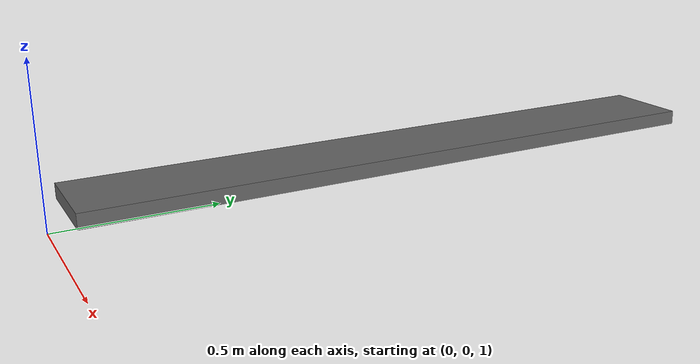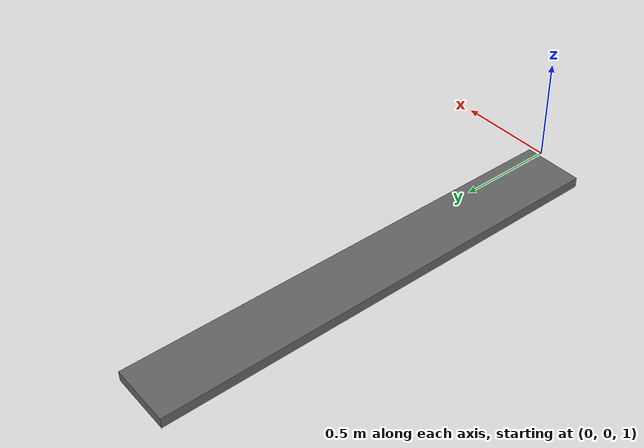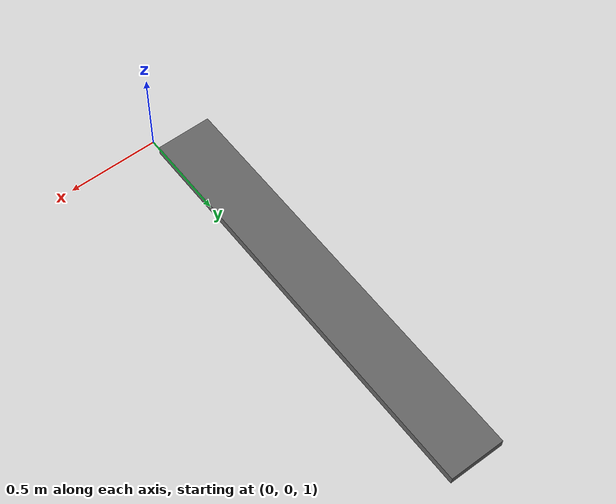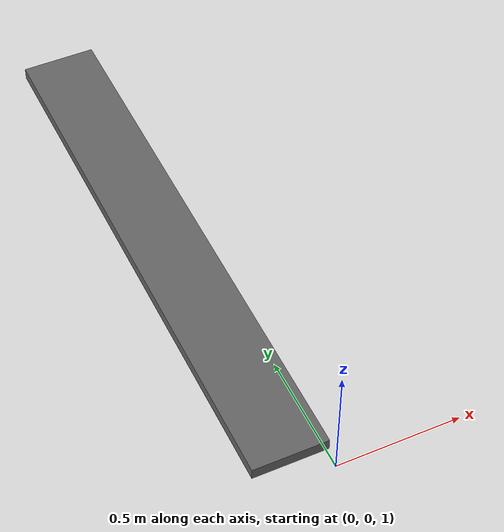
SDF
<?xml version="1.0" ?>
<!-- tmp sdf file generated from LISDF -->
<sdf version="1.9">
  <world name="tmp_world">

<model name="counter_back#1">
  <static>True</static>
  <pose>-0.13899999856948853 1.215999960899353 1.0260000228881836 0.0 -0.0 0.0</pose>
  <link name="box">

    <inertial>
      <mass>0</mass>
      <pose>0.0 0.0 0.0 0.0 -0.0 0.0</pose>
      <inertia>
        <ixx>0</ixx>
        <ixy>0</ixy>
        <ixz>0</ixz>
        <iyy>0</iyy>
        <iyz>0</iyz>
        <izz>0</izz>
      </inertia>
    </inertial>
    <collision name="box_collision">>
      <pose>0.0 0.0 0.0 0.0 -0.0 0.0</pose>
      <geometry>
        <box>
          <size>0.3050000071525574 2.2760000228881836 0.05000000074505806</size>
        </box>
      </geometry>

    </collision>
    <visual name="box_visual">
      <pose>0.0 0.0 0.0 0.0 -0.0 0.0</pose>
      <geometry>
        <box>
          <size>0.3050000071525574 2.2760000228881836 0.05000000074505806</size>
        </box>
      </geometry>
      <material>
        <ambient>1.0 1.0 1.0 1.0</ambient>
        <diffuse>0.4000000059604645 0.4000000059604645 0.4000000059604645 1.0</diffuse>
        <specular>0.0 0.0 0.0 1.0</specular>
        <emissive>0.0 0.0 0.0 1.0</emissive>
      </material>
      <cast_shadows>True</cast_shadows>
    </visual>
    <self_collide>True</self_collide>
  </link>

</model>

  </world>
</sdf>
